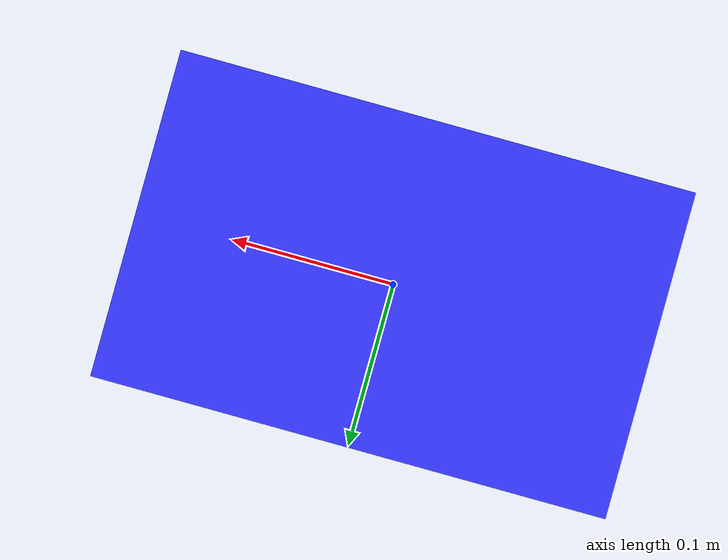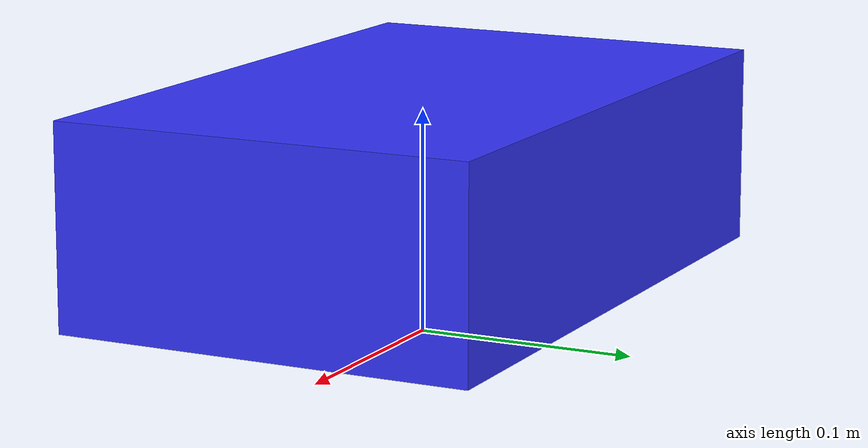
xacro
<?xml version="1.0"?>
<robot xmlns:xacro="http://www.ros.org/wiki/xacro" >

    <!-- In this file the basic structure of the omnidirectional robot RONA is described -->

    <xacro:include filename="inertial_macros.xacro"/>
    <xacro:include filename="macros.xacro"/>
    <xacro:include filename="colors.xacro"/>
    <xacro:include filename="physical_properties.xacro"/>

    <!-- ROBOT DESCRIPTION START -->

    <!-- Base link -->
    <link name="base_link">
    </link>

    <!-- Chassis -->
    <link name="chassis">
        <visual>
            <origin xyz="0 0 ${chassis_height/2}"/>
            <geometry>
                <box size="${chassis_length} ${chassis_width} ${chassis_height}"/>
            </geometry>
            <material name="blue"/>
        </visual>

        <collision>
            <origin xyz="0 0 ${chassis_height/2}"/>
            <geometry>
                <box size="0.297 0.188 0.09"/>
            </geometry>
            <material name="blue"/>
        </collision>

        <xacro:inertial_box mass="3" x="${chassis_length}" y="${chassis_width}" z="${chassis_height}">
            <origin xyz="0 0 ${chassis_length}" rpy="0 0 0"/>
        </xacro:inertial_box>

    </link>

    <joint name="chassis_joint" type="fixed">
        <parent link="base_link"/>
        <child link="chassis"/>
        <origin xyz="0 0 0.022"/>
    </joint>

    <gazebo reference="chassis">
        <material>Gazebo/Blue</material>
    </gazebo>

    <!-- Front left wheel -->
    <xacro:wheel prefix="front" suffix="left" radius="0,0375" length="0,05" mass="0.4" offset_x="${wheel_offset_x}" offset_y="${wheel_offset_y}" offset_z="${wheel_offset_z}" wheel_roller_orientation="${pi/4}"/>

    <!-- Front right wheel -->
    <xacro:wheel prefix="front" suffix="right" radius="0,0375" length="0,05" mass="0.4" offset_x="${wheel_offset_x}" offset_y="${-wheel_offset_y}" offset_z="${wheel_offset_z}" wheel_roller_orientation="${-pi/4}"/>

    <!-- Back left wheel -->
    <xacro:wheel prefix="back" suffix="left" radius="0,0375" length="0,05" mass="0.4" offset_x="${-wheel_offset_x}" offset_y="${wheel_offset_y}" offset_z="${wheel_offset_z}" wheel_roller_orientation="${-pi/4}"/>

    <!-- Back right wheel -->
    <xacro:wheel prefix="back" suffix="right" radius="0,0375" length="0,05" mass="0.4" offset_x="${-wheel_offset_x}" offset_y="${-wheel_offset_y}" offset_z="${wheel_offset_z}" wheel_roller_orientation="${pi/4}"/>

    <!-- ROBOT DESCRIPTION END -->

</robot>

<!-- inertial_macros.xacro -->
<robot xmlns:xacro="http://www.ros.org/wiki/xacro" >

    <!-- Specify some standard inertial calculations https://en.wikipedia.org/wiki/List_of_moments_of_inertia -->
    <!-- These make use of xacro's mathematical functionality -->

    <xacro:macro name="inertial_box" params="mass x y z *origin">
        <inertial>
            <xacro:insert_block name="origin"/>
            <mass value="${mass}" />
            <inertia ixx="${(1/12) * mass * (y*y+z*z)}" ixy="0.0" ixz="0.0"
                    iyy="${(1/12) * mass * (x*x+z*z)}" iyz="0.0"
                    izz="${(1/12) * mass * (x*x+y*y)}" />
        </inertial>
    </xacro:macro>

    <xacro:macro name="inertial_cylinder" params="mass length radius *origin">
        <inertial>
            <xacro:insert_block name="origin"/>
            <mass value="${mass}" />
            <inertia ixx="${(1/12) * mass * (3*radius*radius + length*length)}" ixy="0.0" ixz="0.0"
                    iyy="${(1/12) * mass * (3*radius*radius + length*length)}" iyz="0.0"
                    izz="${(1/2) * mass * (radius*radius)}" />
        </inertial>
    </xacro:macro>

</robot>

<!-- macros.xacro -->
<robot xmlns:xacro="http://www.ros.org/wiki/xacro" >
    <xacro:include filename="physical_properties.xacro"/>
    <xacro:include filename="inertial_macros.xacro"/>

    <xacro:macro name="roller" params="prefix suffix theta roller_orientation">
        <link name="${prefix}_${suffix}_roller">
            <visual>
                <origin xyz="0 0 0" rpy="0 0 0" />
                <geometry>
                    <cylinder radius="0,0082" length="0,045"/>
                </geometry>
                <material name="black"/>
            </visual>
            <collision>
                <origin xyz="0 0 0" rpy="0 0 0" />
                <geometry>
                    <cylinder radius="0,0082" length="0,045"/>
                </geometry>
            </collision>
            <xacro:inertial_cylinder mass="0.001" length="0.045" radius="0.0082">
                <origen xyz="0 0 0" rpy="0 0 0"/>
            </xacro:inertial_cylinder>
        </link>
        <joint name="${prefix}_${suffix}_roller_joint" type="continuous">
                <axis xyz="0 0 1" />
                <parent link="${prefix}_wheel"/>
                <child link="${prefix}_${suffix}_roller"/>
                <origin xyz="${cos(theta)*wheel_radius} ${sin(theta)*wheel_radius} 0" rpy="0 ${roller_orientation} ${(pi/2)+theta}"/>
        </joint>

        <!-- This block provides the simulator (Gazebo) with information on a few additional
        physical properties. See http://gazebosim.org/tutorials/?tut=ros_urdf for more-->
        <gazebo reference="${prefix}_${suffix}_roller">
            <material>Gazebo/Grey</material>
        </gazebo>
    </xacro:macro>

    <xacro:macro name="wheel" params="prefix suffix radius length mass offset_x offset_y offset_z wheel_roller_orientation">
        <link name="${prefix}_${suffix}_wheel">
            <visual>
                <origin xyz="0 0 0" rpy="0 0 0"/>
                <geometry>
                    <cylinder radius="${radius}" length="${length}"/>
                </geometry>
                <material name="orange"/>
            </visual>
            <collision>
                <origin xyz="0 0 0" rpy="0 0 0"/>
                <geometry>
                    <cylinder radius="${radius}" length="${length}"/>
                </geometry>
            </collision>
        </link>

        <joint name="${prefix}_${suffix}_wheel_joint" type="continuous">
            <parent link="chassis"/>
            <child link="${prefix}_${suffix}_wheel"/>
            <origin xyz="${offset_x} ${offset_y} ${offset_z}" rpy="-${pi/2} 0 0"/>
            <axis xyz="0 0 1"/>
        </joint>

        <gazebo reference="${prefix}_${suffix}_wheel">
            <material>Gazebo/Orange</material>
        </gazebo>

        <xacro:roller prefix="${prefix}_${suffix}" suffix="one" theta="${2*pi*(1/10)}" roller_orientation="${wheel_roller_orientation}"/>
        <xacro:roller prefix="${prefix}_${suffix}" suffix="two" theta="${2*pi*(2/10)}" roller_orientation="${wheel_roller_orientation}"/>
        <xacro:roller prefix="${prefix}_${suffix}" suffix="thr" theta="${2*pi*(3/10)}" roller_orientation="${wheel_roller_orientation}"/>
        <xacro:roller prefix="${prefix}_${suffix}" suffix="for" theta="${2*pi*(4/10)}" roller_orientation="${wheel_roller_orientation}"/>
        <xacro:roller prefix="${prefix}_${suffix}" suffix="fve" theta="${2*pi*(5/10)}" roller_orientation="${wheel_roller_orientation}"/>
        <xacro:roller prefix="${prefix}_${suffix}" suffix="six" theta="${2*pi*(6/10)}" roller_orientation="${wheel_roller_orientation}"/>
        <xacro:roller prefix="${prefix}_${suffix}" suffix="svn" theta="${2*pi*(7/10)}" roller_orientation="${wheel_roller_orientation}"/>
        <xacro:roller prefix="${prefix}_${suffix}" suffix="ate" theta="${2*pi*(8/10)}" roller_orientation="${wheel_roller_orientation}"/>
        <xacro:roller prefix="${prefix}_${suffix}" suffix="nne" theta="${2*pi*(9/10)}" roller_orientation="${wheel_roller_orientation}"/>
        <xacro:roller prefix="${prefix}_${suffix}" suffix="ten" theta="${2*pi*(10/10)}" roller_orientation="${wheel_roller_orientation}"/>
    </xacro:macro>

</robot>

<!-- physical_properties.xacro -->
<robot xmlns:xacro="http://www.ros.org/wiki/xacro" >

    <!-- Chassis measures -->
    <xacro:property name="chassis_length" value="0.297"/>
    <xacro:property name="chassis_width" value="0.188"/>
    <xacro:property name="chassis_height" value="0.09"/>
    <!-- In rviz the X axis is red, the Y axis green and the Z axis blue -->

    <!-- Wheels measures -->
    <xacro:property name="wheel_offset_y" value="${chassis_width/2 + 0.025}"/>
    <xacro:property name="wheel_offset_x" value="${chassis_length/2 - 0.051}"/>
    <xacro:property name="wheel_offset_z" value="0.028"/>
    <xacro:property name="wheel_radius" value="0.0375"/>

    <!-- Rollers measures -->
    <xacro:property name="roller_diameter" value="0,01"/>
    <xacro:property name="roller_length" value="0,01"/>

</robot>

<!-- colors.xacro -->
<robot xmlns:xacro="http://www.ros.org/wiki/xacro" >

    <material name="white">
        <color rgba="1 1 1 1" />
    </material>

    <material name="orange">
        <color rgba="1 0.3 0.1 1" />
    </material>

    <material name="blue">
        <color rgba="0.2 0.2 1 1" />
    </material>

    <material name="black">
        <color rgba="0 0 0 1" />
    </material>

    <material name="red">
        <color rgba="1 0 0 1" />
    </material>
</robot>
